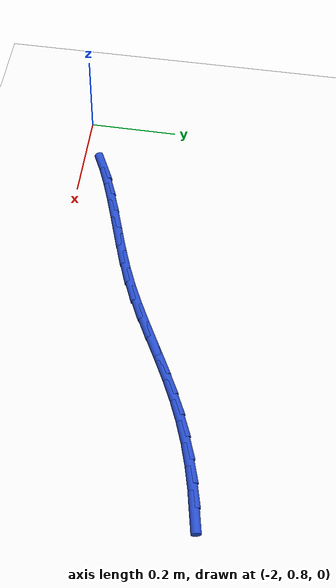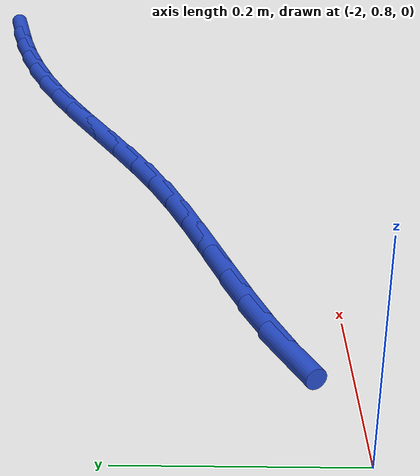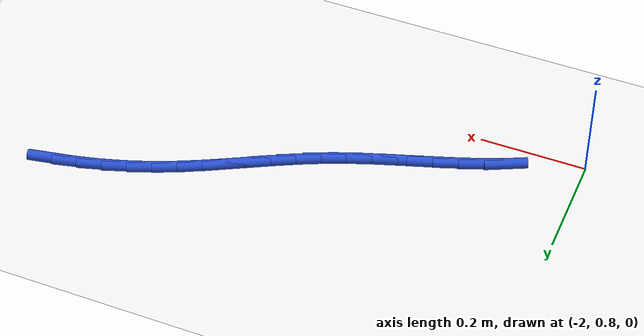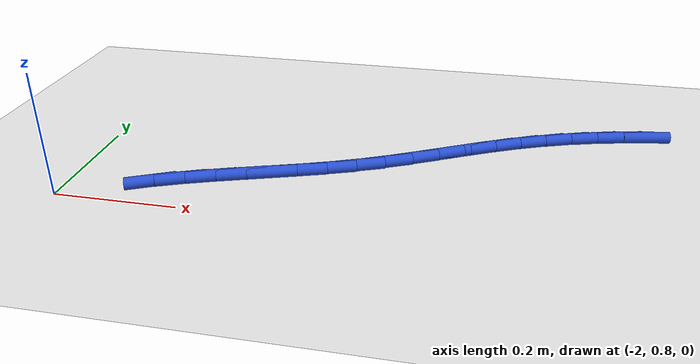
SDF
<sdf version="1.6">
 <world name="default">
  <model name="ground_plane">
   <static>1</static>
   <link name="link">
    <collision name="collision">
     <geometry><plane><normal>0 0 1</normal><size>100 100</size></plane></geometry>
     <surface><friction><ode><mu>100</mu><mu2>50</mu2></ode></friction></surface>
    </collision>
    <visual name="visual">
     <cast_shadows>0</cast_shadows>
     <geometry><plane><normal>0 0 1</normal><size>100 100</size></plane></geometry>
     <material>
      <script><uri>file://media/materials/scripts/gazebo.material</uri><name>Gazebo/WhiteGlow</name></script>
     </material>
    </visual>
   </link>
  </model>
  <model name="line">
   <link name="link_39">
    <pose>-1.0860030974254402 1.1515074513148382 0.01 0 1.57 0.18550825141826252</pose>
    <collision name="collision">
     <geometry><cylinder><radius>0.01</radius><length>0.08</length></cylinder></geometry>
    </collision>
    <visual name="visual">
     <material>
      <script><name>Gazebo/Blue</name><uri>file://media/materials/scripts/gazebo.material</uri></script>
     </material>
     <geometry><cylinder><radius>0.01</radius><length>0.08</length></cylinder></geometry>
    </visual>
   </link>
   <link name="link_40">
    <pose>-1.1316378307507895 1.1429433660970292 0.01 0 1.57 0.2362523699049097</pose>
    <collision name="collision">
     <geometry><cylinder><radius>0.01</radius><length>0.08</length></cylinder></geometry>
    </collision>
    <visual name="visual">
     <material>
      <script><name>Gazebo/Blue</name><uri>file://media/materials/scripts/gazebo.material</uri></script>
     </material>
     <geometry><cylinder><radius>0.01</radius><length>0.08</length></cylinder></geometry>
    </visual>
   </link>
   <link name="link_41">
    <pose>-1.17660462181848 1.1321176893015266 0.01 0 1.57 0.28768732393313073</pose>
    <collision name="collision">
     <geometry><cylinder><radius>0.01</radius><length>0.08</length></cylinder></geometry>
    </collision>
    <visual name="visual">
     <material>
      <script><name>Gazebo/Blue</name><uri>file://media/materials/scripts/gazebo.material</uri></script>
     </material>
     <geometry><cylinder><radius>0.01</radius><length>0.08</length></cylinder></geometry>
    </visual>
   </link>
   <link name="link_42">
    <pose>-1.2207701666089317 1.1190492857317702 0.01 0 1.57 0.33999729677290624</pose>
    <collision name="collision">
     <geometry><cylinder><radius>0.01</radius><length>0.08</length></cylinder></geometry>
    </collision>
    <visual name="visual">
     <material>
      <script><name>Gazebo/Blue</name><uri>file://media/materials/scripts/gazebo.material</uri></script>
     </material>
     <geometry><cylinder><radius>0.01</radius><length>0.08</length></cylinder></geometry>
    </visual>
   </link>
   <link name="link_43">
    <pose>-1.2640011611025652 1.1037570201912015 0.01 0 1.57 0.3932344755952296</pose>
    <collision name="collision">
     <geometry><cylinder><radius>0.01</radius><length>0.08</length></cylinder></geometry>
    </collision>
    <visual name="visual">
     <material>
      <script><name>Gazebo/Blue</name><uri>file://media/materials/scripts/gazebo.material</uri></script>
     </material>
     <geometry><cylinder><radius>0.01</radius><length>0.08</length></cylinder></geometry>
    </visual>
   </link>
   <link name="link_44">
    <pose>-1.3061682742316838 1.0862643747307368 0.01 0 1.57 0.4408505728273881</pose>
    <collision name="collision">
     <geometry><cylinder><radius>0.01</radius><length>0.08</length></cylinder></geometry>
    </collision>
    <visual name="visual">
     <material>
      <script><name>Gazebo/Blue</name><uri>file://media/materials/scripts/gazebo.material</uri></script>
     </material>
     <geometry><cylinder><radius>0.01</radius><length>0.08</length></cylinder></geometry>
    </visual>
   </link>
   <link name="link_45">
    <pose>-1.3473485630042519 1.0668346895344205 0.01 0 1.57 0.47277220237916373</pose>
    <collision name="collision">
     <geometry><cylinder><radius>0.01</radius><length>0.08</length></cylinder></geometry>
    </collision>
    <visual name="visual">
     <material>
      <script><name>Gazebo/Blue</name><uri>file://media/materials/scripts/gazebo.material</uri></script>
     </material>
     <geometry><cylinder><radius>0.01</radius><length>0.08</length></cylinder></geometry>
    </visual>
   </link>
   <link name="link_46">
    <pose>-1.387921834271943 1.0460831517235993 0.01 0 1.57 0.48801485386211624</pose>
    <collision name="collision">
     <geometry><cylinder><radius>0.01</radius><length>0.08</length></cylinder></geometry>
    </collision>
    <visual name="visual">
     <material>
      <script><name>Gazebo/Blue</name><uri>file://media/materials/scripts/gazebo.material</uri></script>
     </material>
     <geometry><cylinder><radius>0.01</radius><length>0.08</length></cylinder></geometry>
    </visual>
   </link>
   <link name="link_47">
    <pose>-1.4282920315184382 1.0246529993013114 0.01 0 1.57 0.4866437018627024</pose>
    <collision name="collision">
     <geometry><cylinder><radius>0.01</radius><length>0.08</length></cylinder></geometry>
    </collision>
    <visual name="visual">
     <material>
      <script><name>Gazebo/Blue</name><uri>file://media/materials/scripts/gazebo.material</uri></script>
     </material>
     <geometry><cylinder><radius>0.01</radius><length>0.08</length></cylinder></geometry>
    </visual>
   </link>
   <link name="link_48">
    <pose>-1.4688630982274207 1.0031874702705967 0.01 0 1.57 0.4688743670649296</pose>
    <collision name="collision">
     <geometry><cylinder><radius>0.01</radius><length>0.08</length></cylinder></geometry>
    </collision>
    <visual name="visual">
     <material>
      <script><name>Gazebo/Blue</name><uri>file://media/materials/scripts/gazebo.material</uri></script>
     </material>
     <geometry><cylinder><radius>0.01</radius><length>0.08</length></cylinder></geometry>
    </visual>
   </link>
   <link name="link_49">
    <pose>-1.5100389778825702 0.9823298026344933 0.01 0 1.57 0.4350766351396224</pose>
    <collision name="collision">
     <geometry><cylinder><radius>0.01</radius><length>0.08</length></cylinder></geometry>
    </collision>
    <visual name="visual">
     <material>
      <script><name>Gazebo/Blue</name><uri>file://media/materials/scripts/gazebo.material</uri></script>
     </material>
     <geometry><cylinder><radius>0.01</radius><length>0.08</length></cylinder></geometry>
    </visual>
   </link>
   <link name="link_50">
    <pose>-1.5522236139675696 0.9627232343960409 0.01 0 1.57 0.3879110520418586</pose>
    <collision name="collision">
     <geometry><cylinder><radius>0.01</radius><length>0.08</length></cylinder></geometry>
    </collision>
    <visual name="visual">
     <material>
      <script><name>Gazebo/Blue</name><uri>file://media/materials/scripts/gazebo.material</uri></script>
     </material>
     <geometry><cylinder><radius>0.01</radius><length>0.08</length></cylinder></geometry>
    </visual>
   </link>
   <link name="link_51">
    <pose>-1.5957638398927176 0.9449320407488593 0.01 0 1.57 0.34717667763188276</pose>
    <collision name="collision">
     <geometry><cylinder><radius>0.01</radius><length>0.08</length></cylinder></geometry>
    </collision>
    <visual name="visual">
     <material>
      <script><name>Gazebo/Blue</name><uri>file://media/materials/scripts/gazebo.material</uri></script>
     </material>
     <geometry><cylinder><radius>0.01</radius><length>0.08</length></cylinder></geometry>
    </visual>
   </link>
   <link name="link_52">
    <pose>-1.6404569217688876 0.9287606418319624 0.01 0 1.57 0.3229288441164636</pose>
    <collision name="collision">
     <geometry><cylinder><radius>0.01</radius><length>0.08</length></cylinder></geometry>
    </collision>
    <visual name="visual">
     <material>
      <script><name>Gazebo/Blue</name><uri>file://media/materials/scripts/gazebo.material</uri></script>
     </material>
     <geometry><cylinder><radius>0.01</radius><length>0.08</length></cylinder></geometry>
    </visual>
   </link>
   <link name="link_53">
    <pose>-1.6857932475800588 0.9135891550718267 0.01 0 1.57 0.3146183898904794</pose>
    <collision name="collision">
     <geometry><cylinder><radius>0.01</radius><length>0.08</length></cylinder></geometry>
    </collision>
    <visual name="visual">
     <material>
      <script><name>Gazebo/Blue</name><uri>file://media/materials/scripts/gazebo.material</uri></script>
     </material>
     <geometry><cylinder><radius>0.01</radius><length>0.08</length></cylinder></geometry>
    </visual>
   </link>
   <link name="link_54">
    <pose>-1.7312598614935808 0.8987930745922521 0.01 0 1.57 0.32209383492785537</pose>
    <collision name="collision">
     <geometry><cylinder><radius>0.01</radius><length>0.08</length></cylinder></geometry>
    </collision>
    <visual name="visual">
     <material>
      <script><name>Gazebo/Blue</name><uri>file://media/materials/scripts/gazebo.material</uri></script>
     </material>
     <geometry><cylinder><radius>0.01</radius><length>0.08</length></cylinder></geometry>
    </visual>
   </link>
   <link name="link_55">
    <pose>-1.7763438076768037 0.8837478945170378 0.01 0 1.57 0.34577572491099423</pose>
    <collision name="collision">
     <geometry><cylinder><radius>0.01</radius><length>0.08</length></cylinder></geometry>
    </collision>
    <visual name="visual">
     <material>
      <script><name>Gazebo/Blue</name><uri>file://media/materials/scripts/gazebo.material</uri></script>
     </material>
     <geometry><cylinder><radius>0.01</radius><length>0.08</length></cylinder></geometry>
    </visual>
   </link>
   <link name="link_56">
    <pose>-1.8205321302970774 0.8678291089699842 0.01 0 1.57 0.3866373767102883</pose>
    <collision name="collision">
     <geometry><cylinder><radius>0.01</radius><length>0.08</length></cylinder></geometry>
    </collision>
    <visual name="visual">
     <material>
      <script><name>Gazebo/Blue</name><uri>file://media/materials/scripts/gazebo.material</uri></script>
     </material>
     <geometry><cylinder><radius>0.01</radius><length>0.08</length></cylinder></geometry>
    </visual>
   </link>
   <link name="link_57">
    <pose>-1.8633118735217535 0.8504122120748908 0.01 0 1.57 0.446078300359558</pose>
    <collision name="collision">
     <geometry><cylinder><radius>0.01</radius><length>0.08</length></cylinder></geometry>
    </collision>
    <visual name="visual">
     <material>
      <script><name>Gazebo/Blue</name><uri>file://media/materials/scripts/gazebo.material</uri></script>
     </material>
     <geometry><cylinder><radius>0.01</radius><length>0.08</length></cylinder></geometry>
    </visual>
   </link>
  </model>
 </world>
</sdf>
